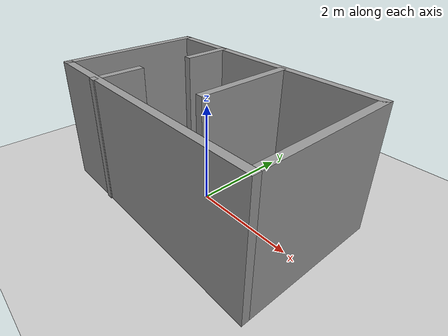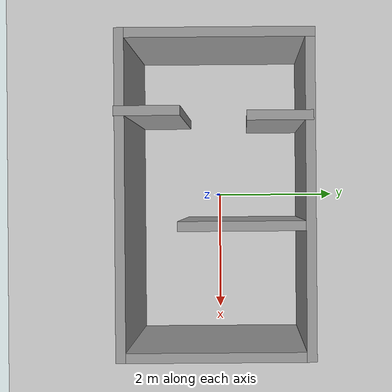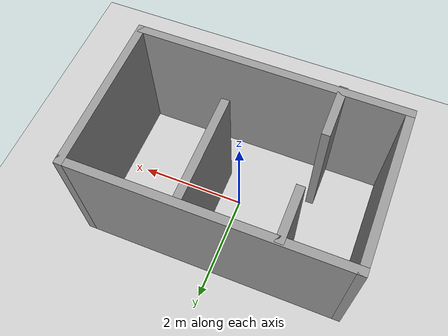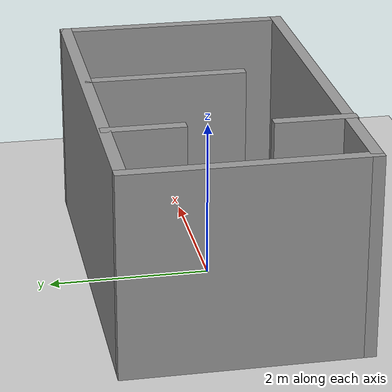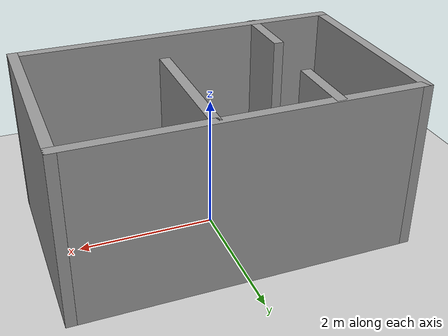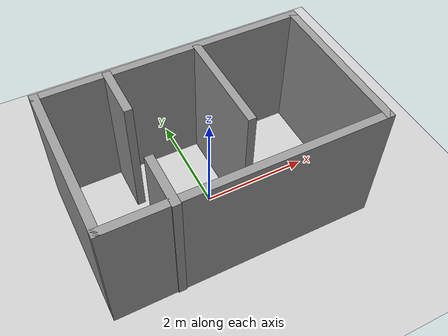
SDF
<?xml version="1.0" ?>
<sdf version="1.6">
  <world name="default">
    <include>
      <uri>model://sun</uri>
    </include>
    <include>
      <uri>model://ground_plane</uri>
    </include>
    <include>
      <name>my_simulation_environment</name>
      <uri>file:///home/sam/catkin_ws/src/ros_2dnav_learning/models/world_t3</uri>
      <pose>0 0 0 0 0 0</pose>
    </include>
  </world>
</sdf>

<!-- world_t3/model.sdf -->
<sdf version='1.7'>
  <model name='world_t3'>
    <pose>1.195 -0.524782 0 0 -0 0</pose>
    <link name='Wall_11'>
      <collision name='Wall_11_Collision'>
        <geometry>
          <box>
            <size>1 0.15 2.5</size>
          </box>
        </geometry>
        <pose>0 0 1.25 0 -0 0</pose>
      </collision>
      <visual name='Wall_11_Visual'>
        <pose>0 0 1.25 0 -0 0</pose>
        <geometry>
          <box>
            <size>1 0.15 2.5</size>
          </box>
        </geometry>
        <material>
          <script>
            <uri>file://media/materials/scripts/gazebo.material</uri>
            <name>Gazebo/Grey</name>
          </script>
          <ambient>1 1 1 1</ambient>
        </material>
        <meta>
          <layer>0</layer>
        </meta>
      </visual>
      <pose>-1.185 0.983696 0 0 -0 -1.5708</pose>
    </link>
    <link name='Wall_13'>
      <collision name='Wall_13_Collision'>
        <geometry>
          <box>
            <size>1 0.15 2.5</size>
          </box>
        </geometry>
        <pose>0 0 1.25 0 -0 0</pose>
      </collision>
      <visual name='Wall_13_Visual'>
        <pose>0 0 1.25 0 -0 0</pose>
        <geometry>
          <box>
            <size>1 0.15 2.5</size>
          </box>
        </geometry>
        <material>
          <script>
            <uri>file://media/materials/scripts/gazebo.material</uri>
            <name>Gazebo/Grey</name>
          </script>
          <ambient>1 1 1 1</ambient>
        </material>
        <meta>
          <layer>0</layer>
        </meta>
      </visual>
      <pose>-1.26326 -1.00978 0 0 -0 1.5708</pose>
    </link>
    <link name='Wall_2'>
      <collision name='Wall_2_Collision'>
        <geometry>
          <box>
            <size>5 0.15 2.5</size>
          </box>
        </geometry>
        <pose>0 0 1.25 0 -0 0</pose>
      </collision>
      <visual name='Wall_2_Visual'>
        <pose>0 0 1.25 0 -0 0</pose>
        <geometry>
          <box>
            <size>5 0.15 2.5</size>
          </box>
        </geometry>
        <material>
          <script>
            <uri>file://media/materials/scripts/gazebo.material</uri>
            <name>Gazebo/Grey</name>
          </script>
          <ambient>1 1 1 1</ambient>
        </material>
        <meta>
          <layer>0</layer>
        </meta>
      </visual>
      <pose>0 -1.41522 0 0 -0 0</pose>
    </link>
    <link name='Wall_4'>
      <collision name='Wall_4_Collision'>
        <geometry>
          <box>
            <size>3 0.15 2.5</size>
          </box>
        </geometry>
        <pose>0 0 1.25 0 -0 0</pose>
      </collision>
      <visual name='Wall_4_Visual'>
        <pose>0 0 1.25 0 -0 0</pose>
        <geometry>
          <box>
            <size>3 0.15 2.5</size>
          </box>
        </geometry>
        <material>
          <script>
            <uri>file://media/materials/scripts/gazebo.material</uri>
            <name>Gazebo/Grey</name>
          </script>
          <ambient>1 1 1 1</ambient>
        </material>
        <meta>
          <layer>0</layer>
        </meta>
      </visual>
      <pose>-2.425 0.009782 0 0 -0 1.5708</pose>
    </link>
    <link name='Wall_6'>
      <collision name='Wall_6_Collision'>
        <geometry>
          <box>
            <size>5 0.15 2.5</size>
          </box>
        </geometry>
        <pose>0 0 1.25 0 -0 0</pose>
      </collision>
      <visual name='Wall_6_Visual'>
        <pose>0 0 1.25 0 -0 0</pose>
        <geometry>
          <box>
            <size>5 0.15 2.5</size>
          </box>
        </geometry>
        <material>
          <script>
            <uri>file://media/materials/scripts/gazebo.material</uri>
            <name>Gazebo/Grey</name>
          </script>
          <ambient>1 1 1 1</ambient>
        </material>
        <meta>
          <layer>0</layer>
        </meta>
      </visual>
      <pose>0 1.43478 0 0 -0 0</pose>
    </link>
    <link name='Wall_7'>
      <collision name='Wall_7_Collision'>
        <geometry>
          <box>
            <size>3 0.15 2.5</size>
          </box>
        </geometry>
        <pose>0 0 1.25 0 -0 0</pose>
      </collision>
      <visual name='Wall_7_Visual'>
        <pose>0 0 1.25 0 -0 0</pose>
        <geometry>
          <box>
            <size>3 0.15 2.5</size>
          </box>
        </geometry>
        <material>
          <script>
            <uri>file://media/materials/scripts/gazebo.material</uri>
            <name>Gazebo/Grey</name>
          </script>
          <ambient>1 1 1 1</ambient>
        </material>
        <meta>
          <layer>0</layer>
        </meta>
      </visual>
      <pose>2.425 0.009782 0 0 -0 -1.5708</pose>
    </link>
    <link name='Wall_9'>
      <collision name='Wall_9_Collision'>
        <geometry>
          <box>
            <size>2 0.15 2.5</size>
          </box>
        </geometry>
        <pose>0 0 1.25 0 -0 0</pose>
      </collision>
      <visual name='Wall_9_Visual'>
        <pose>0 0 1.25 0 -0 0</pose>
        <geometry>
          <box>
            <size>2 0.15 2.5</size>
          </box>
        </geometry>
        <material>
          <script>
            <uri>file://media/materials/scripts/gazebo.material</uri>
            <name>Gazebo/Grey</name>
          </script>
          <ambient>1 1 1 1</ambient>
        </material>
        <meta>
          <layer>0</layer>
        </meta>
      </visual>
      <pose>0.467174 0.440217 0 0 -0 -1.5708</pose>
    </link>
    <static>1</static>
  </model>
</sdf>
